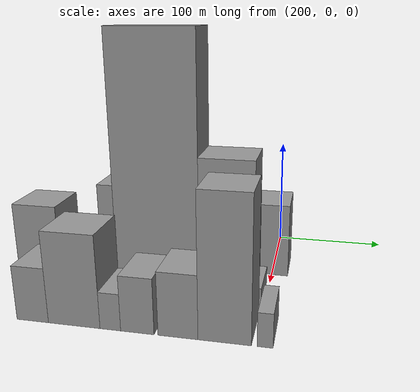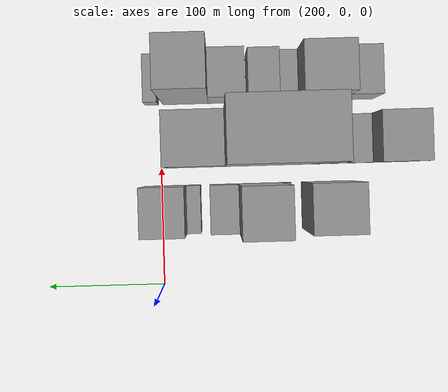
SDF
<sdf version="1.6">
 <world name="default">
  <model name="building_171">
   <static>1</static>
   <pose>265.0000 -141.2926 0 0.000000 0.000000 0.000000</pose>
   <link name="link">
    <pose>0 0 37.50 0 0 0</pose>
    <collision name="collision"><geometry><box><size>40.0000 42.3692 75.0000</size></box></geometry></collision>
    <visual name="visual">
     <cast_shadows>0</cast_shadows>
     <geometry><box><size>40.0000 42.3692 75.0000</size></box></geometry>
     <material>
      <script>
       <uri>model://grey_wall/materials/scripts</uri>
       <uri>model://grey_wall/materials/textures</uri>
       <name>vrc/grey_wall</name>
      </script>
     </material>
    </visual>
   </link>
  </model>
  <model name="building_172">
   <static>1</static>
   <pose>265.0000 -106.4260 0 0.000000 0.000000 0.000000</pose>
   <link name="link">
    <pose>0 0 7.50 0 0 0</pose>
    <collision name="collision"><geometry><box><size>40.0000 7.3638 15.0000</size></box></geometry></collision>
    <visual name="visual">
     <cast_shadows>0</cast_shadows>
     <geometry><box><size>40.0000 7.3638 15.0000</size></box></geometry>
     <material>
      <script>
       <uri>model://grey_wall/materials/scripts</uri>
       <uri>model://grey_wall/materials/textures</uri>
       <name>vrc/grey_wall</name>
      </script>
     </material>
    </visual>
   </link>
  </model>
  <model name="building_173">
   <static>1</static>
   <pose>265.0000 -83.8383 0 0.000000 0.000000 0.000000</pose>
   <link name="link">
    <pose>0 0 52.50 0 0 0</pose>
    <collision name="collision"><geometry><box><size>40.0000 37.8115 105.0000</size></box></geometry></collision>
    <visual name="visual">
     <cast_shadows>0</cast_shadows>
     <geometry><box><size>40.0000 37.8115 105.0000</size></box></geometry>
     <material>
      <script>
       <uri>model://grey_wall/materials/scripts</uri>
       <uri>model://grey_wall/materials/textures</uri>
       <name>vrc/grey_wall</name>
      </script>
     </material>
    </visual>
   </link>
  </model>
  <model name="building_174">
   <static>1</static>
   <pose>265.0000 -53.1751 0 0.000000 0.000000 0.000000</pose>
   <link name="link">
    <pose>0 0 21.00 0 0 0</pose>
    <collision name="collision"><geometry><box><size>40.0000 23.5150 42.0000</size></box></geometry></collision>
    <visual name="visual">
     <cast_shadows>0</cast_shadows>
     <geometry><box><size>40.0000 23.5150 42.0000</size></box></geometry>
     <material>
      <script>
       <uri>model://grey_wall/materials/scripts</uri>
       <uri>model://grey_wall/materials/textures</uri>
       <name>vrc/grey_wall</name>
      </script>
     </material>
    </visual>
   </link>
  </model>
  <model name="building_175">
   <static>1</static>
   <pose>265.0000 -27.5356 0 0.000000 0.000000 0.000000</pose>
   <link name="link">
    <pose>0 0 13.50 0 0 0</pose>
    <collision name="collision"><geometry><box><size>40.0000 11.7638 27.0000</size></box></geometry></collision>
    <visual name="visual">
     <cast_shadows>0</cast_shadows>
     <geometry><box><size>40.0000 11.7638 27.0000</size></box></geometry>
     <material>
      <script>
       <uri>model://grey_wall/materials/scripts</uri>
       <uri>model://grey_wall/materials/textures</uri>
       <name>vrc/grey_wall</name>
      </script>
     </material>
    </visual>
   </link>
  </model>
  <model name="building_176">
   <static>1</static>
   <pose>265.0000 -3.7650 0 0.000000 0.000000 0.000000</pose>
   <link name="link">
    <pose>0 0 33.00 0 0 0</pose>
    <collision name="collision"><geometry><box><size>40.0000 35.7774 66.0000</size></box></geometry></collision>
    <visual name="visual">
     <cast_shadows>0</cast_shadows>
     <geometry><box><size>40.0000 35.7774 66.0000</size></box></geometry>
     <material>
      <script>
       <uri>model://grey_wall/materials/scripts</uri>
       <uri>model://grey_wall/materials/textures</uri>
       <name>vrc/grey_wall</name>
      </script>
     </material>
    </visual>
   </link>
  </model>
  <model name="building_228">
   <static>1</static>
   <pose>320.0000 -194.4834 0 0.000000 0.000000 0.000000</pose>
   <link name="link">
    <pose>0 0 36.00 0 0 0</pose>
    <collision name="collision"><geometry><box><size>40.0000 38.7596 72.0000</size></box></geometry></collision>
    <visual name="visual">
     <cast_shadows>0</cast_shadows>
     <geometry><box><size>40.0000 38.7596 72.0000</size></box></geometry>
     <material>
      <script>
       <uri>model://grey_wall/materials/scripts</uri>
       <uri>model://grey_wall/materials/textures</uri>
       <name>vrc/grey_wall</name>
      </script>
     </material>
    </visual>
   </link>
  </model>
  <model name="building_229">
   <static>1</static>
   <pose>320.0000 -166.0504 0 0.000000 0.000000 0.000000</pose>
   <link name="link">
    <pose>0 0 18.00 0 0 0</pose>
    <collision name="collision"><geometry><box><size>40.0000 18.1063 36.0000</size></box></geometry></collision>
    <visual name="visual">
     <cast_shadows>0</cast_shadows>
     <geometry><box><size>40.0000 18.1063 36.0000</size></box></geometry>
     <material>
      <script>
       <uri>model://grey_wall/materials/scripts</uri>
       <uri>model://grey_wall/materials/textures</uri>
       <name>vrc/grey_wall</name>
      </script>
     </material>
    </visual>
   </link>
  </model>
  <model name="building_230">
   <static>1</static>
   <pose>320.0000 -151.8641 0 0.000000 0.000000 0.000000</pose>
   <link name="link">
    <pose>0 0 10.50 0 0 0</pose>
    <collision name="collision"><geometry><box><size>40.0000 10.2663 21.0000</size></box></geometry></collision>
    <visual name="visual">
     <cast_shadows>0</cast_shadows>
     <geometry><box><size>40.0000 10.2663 21.0000</size></box></geometry>
     <material>
      <script>
       <uri>model://grey_wall/materials/scripts</uri>
       <uri>model://grey_wall/materials/textures</uri>
       <name>vrc/grey_wall</name>
      </script>
     </material>
    </visual>
   </link>
  </model>
  <model name="building_231">
   <static>1</static>
   <pose>320.0000 -135.2683 0 0.000000 0.000000 0.000000</pose>
   <link name="link">
    <pose>0 0 19.50 0 0 0</pose>
    <collision name="collision"><geometry><box><size>40.0000 22.9255 39.0000</size></box></geometry></collision>
    <visual name="visual">
     <cast_shadows>0</cast_shadows>
     <geometry><box><size>40.0000 22.9255 39.0000</size></box></geometry>
     <material>
      <script>
       <uri>model://grey_wall/materials/scripts</uri>
       <uri>model://grey_wall/materials/textures</uri>
       <name>vrc/grey_wall</name>
      </script>
     </material>
    </visual>
   </link>
  </model>
  <model name="building_232">
   <static>1</static>
   <pose>320.0000 -88.7076 0 0.000000 0.000000 0.000000</pose>
   <link name="link">
    <pose>0 0 108.00 0 0 0</pose>
    <collision name="collision"><geometry><box><size>40.0000 70.1958 216.0000</size></box></geometry></collision>
    <visual name="visual">
     <cast_shadows>0</cast_shadows>
     <geometry><box><size>40.0000 70.1958 216.0000</size></box></geometry>
     <material>
      <script>
       <uri>model://grey_wall/materials/scripts</uri>
       <uri>model://grey_wall/materials/textures</uri>
       <name>vrc/grey_wall</name>
      </script>
     </material>
    </visual>
   </link>
  </model>
  <model name="building_233">
   <static>1</static>
   <pose>320.0000 -31.2903 0 0.000000 0.000000 0.000000</pose>
   <link name="link">
    <pose>0 0 60.00 0 0 0</pose>
    <collision name="collision"><geometry><box><size>40.0000 44.6390 120.0000</size></box></geometry></collision>
    <visual name="visual">
     <cast_shadows>0</cast_shadows>
     <geometry><box><size>40.0000 44.6390 120.0000</size></box></geometry>
     <material>
      <script>
       <uri>model://grey_wall/materials/scripts</uri>
       <uri>model://grey_wall/materials/textures</uri>
       <name>vrc/grey_wall</name>
      </script>
     </material>
    </visual>
   </link>
  </model>
  <model name="building_234">
   <static>1</static>
   <pose>320.0000 -5.9348 0 0.000000 0.000000 0.000000</pose>
   <link name="link">
    <pose>0 0 7.50 0 0 0</pose>
    <collision name="collision"><geometry><box><size>40.0000 6.0720 15.0000</size></box></geometry></collision>
    <visual name="visual">
     <cast_shadows>0</cast_shadows>
     <geometry><box><size>40.0000 6.0720 15.0000</size></box></geometry>
     <material>
      <script>
       <uri>model://grey_wall/materials/scripts</uri>
       <uri>model://grey_wall/materials/textures</uri>
       <name>vrc/grey_wall</name>
      </script>
     </material>
    </visual>
   </link>
  </model>
  <model name="building_283">
   <static>1</static>
   <pose>375.0000 -171.0425 0 0.000000 0.000000 0.000000</pose>
   <link name="link">
    <pose>0 0 22.50 0 0 0</pose>
    <collision name="collision"><geometry><box><size>40.0000 26.0470 45.0000</size></box></geometry></collision>
    <visual name="visual">
     <cast_shadows>0</cast_shadows>
     <geometry><box><size>40.0000 26.0470 45.0000</size></box></geometry>
     <material>
      <script>
       <uri>model://grey_wall/materials/scripts</uri>
       <uri>model://grey_wall/materials/textures</uri>
       <name>vrc/grey_wall</name>
      </script>
     </material>
    </visual>
   </link>
  </model>
  <model name="building_284">
   <static>1</static>
   <pose>375.0000 -137.2375 0 0.000000 0.000000 0.000000</pose>
   <link name="link">
    <pose>0 0 37.50 0 0 0</pose>
    <collision name="collision"><geometry><box><size>40.0000 41.5631 75.0000</size></box></geometry></collision>
    <visual name="visual">
     <cast_shadows>0</cast_shadows>
     <geometry><box><size>40.0000 41.5631 75.0000</size></box></geometry>
     <material>
      <script>
       <uri>model://grey_wall/materials/scripts</uri>
       <uri>model://grey_wall/materials/textures</uri>
       <name>vrc/grey_wall</name>
      </script>
     </material>
    </visual>
   </link>
  </model>
  <model name="building_285">
   <static>1</static>
   <pose>375.0000 -108.3480 0 0.000000 0.000000 0.000000</pose>
   <link name="link">
    <pose>0 0 15.00 0 0 0</pose>
    <collision name="collision"><geometry><box><size>40.0000 16.2159 30.0000</size></box></geometry></collision>
    <visual name="visual">
     <cast_shadows>0</cast_shadows>
     <geometry><box><size>40.0000 16.2159 30.0000</size></box></geometry>
     <material>
      <script>
       <uri>model://grey_wall/materials/scripts</uri>
       <uri>model://grey_wall/materials/textures</uri>
       <name>vrc/grey_wall</name>
      </script>
     </material>
    </visual>
   </link>
  </model>
  <model name="building_286">
   <static>1</static>
   <pose>375.0000 -87.3894 0 0.000000 0.000000 0.000000</pose>
   <link name="link">
    <pose>0 0 22.50 0 0 0</pose>
    <collision name="collision"><geometry><box><size>40.0000 25.7012 45.0000</size></box></geometry></collision>
    <visual name="visual">
     <cast_shadows>0</cast_shadows>
     <geometry><box><size>40.0000 25.7012 45.0000</size></box></geometry>
     <material>
      <script>
       <uri>model://grey_wall/materials/scripts</uri>
       <uri>model://grey_wall/materials/textures</uri>
       <name>vrc/grey_wall</name>
      </script>
     </material>
    </visual>
   </link>
  </model>
  <model name="building_287">
   <static>1</static>
   <pose>375.0000 -56.5774 0 0.000000 0.000000 0.000000</pose>
   <link name="link">
    <pose>0 0 25.50 0 0 0</pose>
    <collision name="collision"><geometry><box><size>40.0000 29.9229 51.0000</size></box></geometry></collision>
    <visual name="visual">
     <cast_shadows>0</cast_shadows>
     <geometry><box><size>40.0000 29.9229 51.0000</size></box></geometry>
     <material>
      <script>
       <uri>model://grey_wall/materials/scripts</uri>
       <uri>model://grey_wall/materials/textures</uri>
       <name>vrc/grey_wall</name>
      </script>
     </material>
    </visual>
   </link>
  </model>
  <model name="building_288">
   <static>1</static>
   <pose>375.0000 -22.2598 0 0.000000 0.000000 0.000000</pose>
   <link name="link">
    <pose>0 0 57.00 0 0 0</pose>
    <collision name="collision"><geometry><box><size>40.0000 38.7122 114.0000</size></box></geometry></collision>
    <visual name="visual">
     <cast_shadows>0</cast_shadows>
     <geometry><box><size>40.0000 38.7122 114.0000</size></box></geometry>
     <material>
      <script>
       <uri>model://grey_wall/materials/scripts</uri>
       <uri>model://grey_wall/materials/textures</uri>
       <name>vrc/grey_wall</name>
      </script>
     </material>
    </visual>
   </link>
  </model>
  <model name="building_289">
   <static>1</static>
   <pose>375.0000 6.7772 0 0.000000 0.000000 0.000000</pose>
   <link name="link">
    <pose>0 0 13.50 0 0 0</pose>
    <collision name="collision"><geometry><box><size>40.0000 11.3620 27.0000</size></box></geometry></collision>
    <visual name="visual">
     <cast_shadows>0</cast_shadows>
     <geometry><box><size>40.0000 11.3620 27.0000</size></box></geometry>
     <material>
      <script>
       <uri>model://grey_wall/materials/scripts</uri>
       <uri>model://grey_wall/materials/textures</uri>
       <name>vrc/grey_wall</name>
      </script>
     </material>
    </visual>
   </link>
  </model>
 </world>
</sdf>
